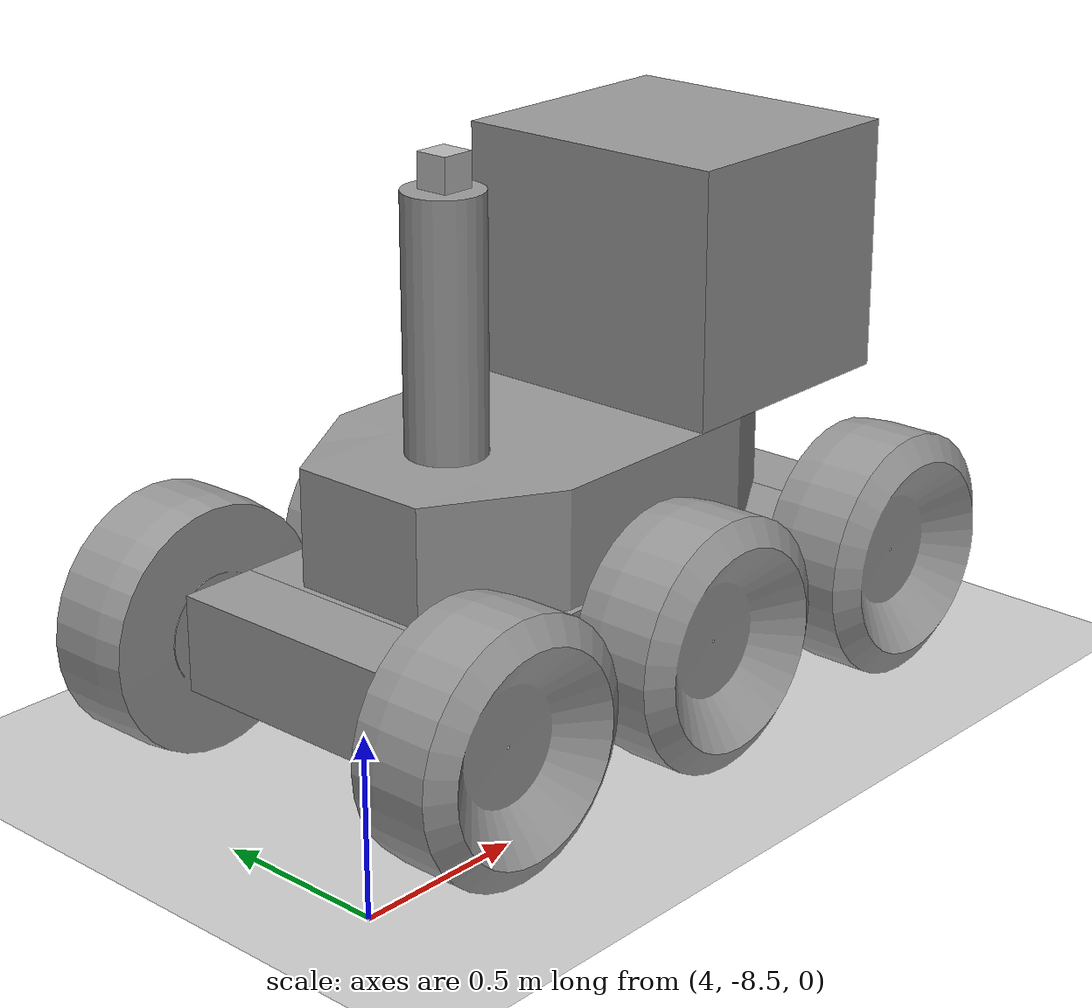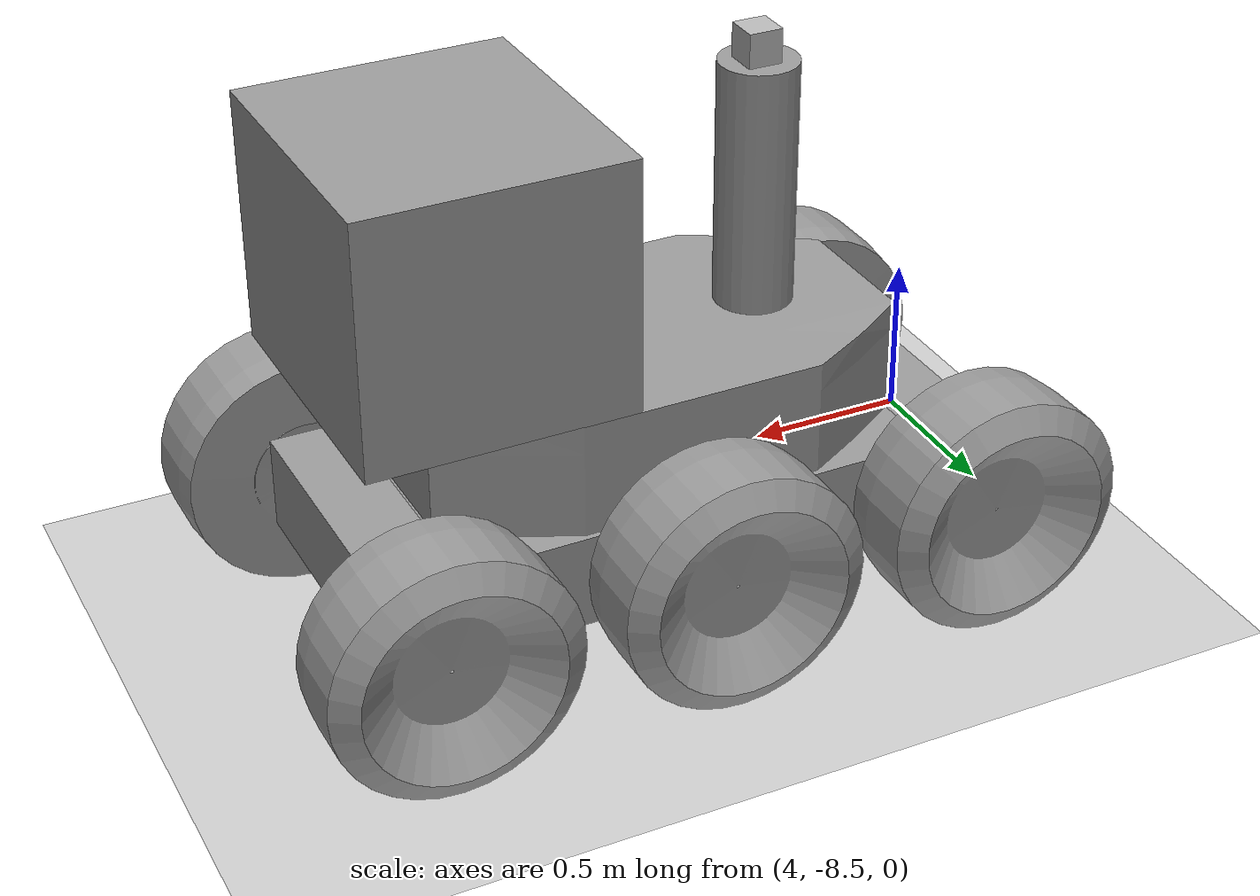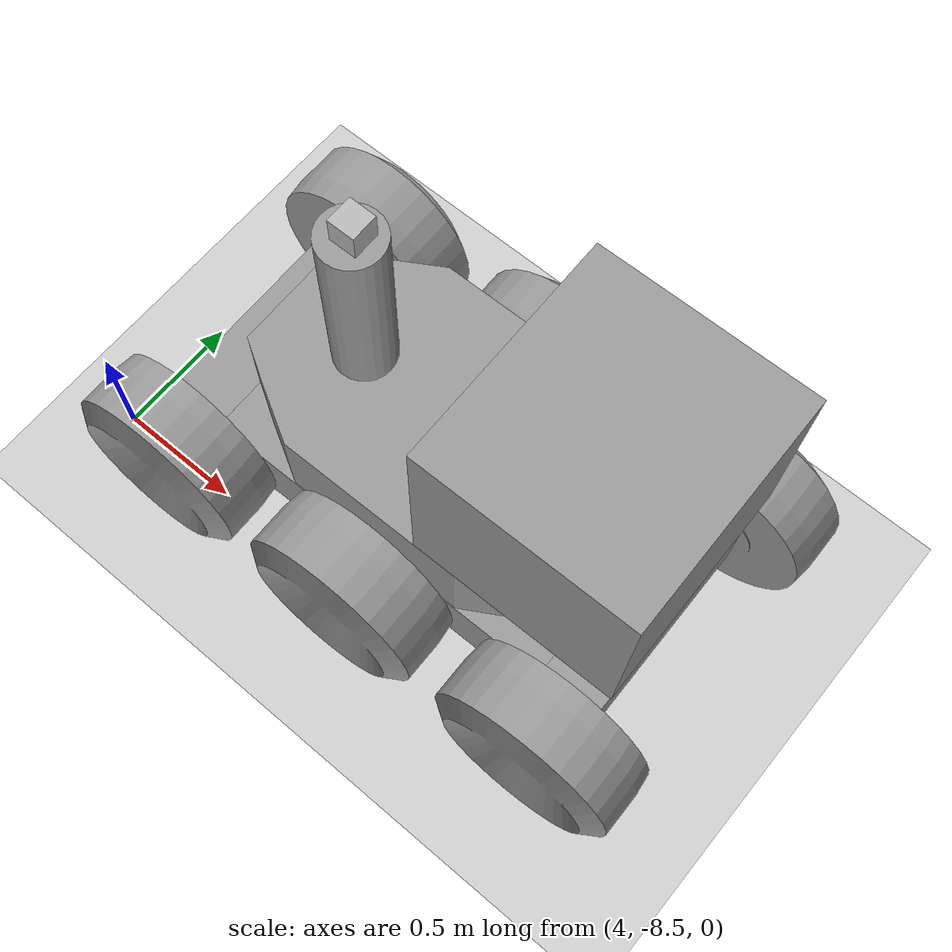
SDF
<sdf version="1.7">
 <world name="default">
  <light name="sun" type="directional">
   <pose>0 0 10 0 -0 0</pose>
   <diffuse>0.8 0.8 0.8 1</diffuse>
   <specular>0.2 0.2 0.2 1</specular>
   <attenuation>
    <range>1000</range>
    <constant>0.9</constant>
    <linear>0.01</linear>
    <quadratic>0.001</quadratic>
   </attenuation>
   <direction>-0.5 0.1 -0.9</direction>
   <spot><inner_angle>0</inner_angle><outer_angle>0</outer_angle><falloff>0</falloff></spot>
  </light>
  <model name="ground_plane">
   <static>1</static>
   <link name="link">
    <collision name="collision">
     <geometry><plane><normal>0 0 1</normal><size>100 100</size></plane></geometry>
     <surface>
      <contact><collide_bitmask>65535</collide_bitmask></contact>
      <friction><ode><mu>100</mu><mu2>50</mu2></ode></friction>
     </surface>
    </collision>
    <visual name="visual">
     <cast_shadows>0</cast_shadows>
     <geometry><plane><normal>0 0 1</normal><size>100 100</size></plane></geometry>
     <material>
      <script><uri>file://media/materials/scripts/gazebo.material</uri><name>Gazebo/Grey</name></script>
     </material>
    </visual>
   </link>
  </model>
  <gravity>0 0 -9.8</gravity>
  <magnetic_field>6e-06 2.3e-05 -4.2e-05</magnetic_field>
  <atmosphere type="adiabatic"/>
  <physics type="ode">
   <max_step_size>0.001</max_step_size>
   <real_time_factor>1</real_time_factor>
   <real_time_update_rate>1000</real_time_update_rate>
  </physics>
  <scene><ambient>0.4 0.4 0.4 1</ambient><background>0.7 0.7 0.7 1</background><shadows>1</shadows></scene>
  <spherical_coordinates>
   <surface_model>EARTH_WGS84</surface_model>
   <latitude_deg>0</latitude_deg>
   <longitude_deg>0</longitude_deg>
   <elevation>0</elevation>
   <heading_deg>0</heading_deg>
  </spherical_coordinates>
  <model name="robovolc">
   <link name="link_0">
    <inertial>
     <mass>1</mass>
     <inertia>
      <ixx>0.166667</ixx>
      <ixy>0</ixy>
      <ixz>0</ixz>
      <iyy>0.166667</iyy>
      <iyz>0</iyz>
      <izz>0.166667</izz>
     </inertia>
    </inertial>
    <pose>-0.014097 0.007179 0 0 -0 0</pose>
    <visual name="visual">
     <geometry>
      <mesh>
       <uri>/media/kenan/kenan-acads/thesis/robot-alignment-thesis/gazebo/models/robovolc/parts/lowerframe.dae</uri>
       <scale>1 1 1</scale>
      </mesh>
     </geometry>
     <material>
      <lighting>1</lighting>
      <script><uri>file://media/materials/scripts/gazebo.material</uri><name>Gazebo/Grey</name></script>
      <shader type="pixel"/>
      <emissive>0 0 0 1</emissive>
     </material>
    </visual>
    <collision name="collision">
     <geometry>
      <mesh>
       <uri>/media/kenan/kenan-acads/thesis/robot-alignment-thesis/gazebo/models/robovolc/parts/lowerframe.dae</uri>
       <scale>1 1 1</scale>
      </mesh>
     </geometry>
     <surface>
      <friction>
       <ode><mu>1</mu><mu2>1</mu2><fdir1>0 0 0</fdir1><slip1>0</slip1><slip2>0</slip2></ode>
       <torsional>
        <coefficient>1</coefficient>
        <patch_radius>0</patch_radius>
        <surface_radius>0</surface_radius>
        <use_patch_radius>1</use_patch_radius>
        <ode><slip>0</slip></ode>
       </torsional>
      </friction>
      <bounce><restitution_coefficient>0</restitution_coefficient><threshold>1e+06</threshold></bounce>
      <contact>
       <collide_without_contact>0</collide_without_contact>
       <collide_without_contact_bitmask>1</collide_without_contact_bitmask>
       <collide_bitmask>1</collide_bitmask>
       <ode>
        <soft_cfm>0</soft_cfm>
        <soft_erp>0.2</soft_erp>
        <kp>1e+13</kp>
        <kd>1</kd>
        <max_vel>0.01</max_vel>
        <min_depth>0</min_depth>
       </ode>
       <bullet>
        <split_impulse>1</split_impulse>
        <split_impulse_penetration_threshold>-0.01</split_impulse_penetration_threshold>
        <soft_cfm>0</soft_cfm>
        <soft_erp>0.2</soft_erp>
        <kp>1e+13</kp>
        <kd>1</kd>
       </bullet>
      </contact>
     </surface>
    </collision>
   </link>
   <link name="link_1">
    <inertial>
     <mass>1</mass>
     <inertia>
      <ixx>0.166667</ixx>
      <ixy>0</ixy>
      <ixz>0</ixz>
      <iyy>0.166667</iyy>
      <iyz>0</iyz>
      <izz>0.166667</izz>
     </inertia>
    </inertial>
    <pose>0.819354 0.007179 0 0 -0 0</pose>
    <visual name="visual">
     <geometry>
      <mesh>
       <uri>/media/kenan/kenan-acads/thesis/robot-alignment-thesis/gazebo/models/robovolc/parts/freedom.dae</uri>
       <scale>1 1 1</scale>
      </mesh>
     </geometry>
     <material>
      <lighting>1</lighting>
      <script><uri>file://media/materials/scripts/gazebo.material</uri><name>Gazebo/Grey</name></script>
      <shader type="pixel"/>
      <emissive>0 0 0 1</emissive>
     </material>
    </visual>
    <collision name="collision">
     <geometry>
      <mesh>
       <uri>/media/kenan/kenan-acads/thesis/robot-alignment-thesis/gazebo/models/robovolc/parts/freedom.dae</uri>
       <scale>1 1 1</scale>
      </mesh>
     </geometry>
     <surface>
      <friction>
       <ode><mu>1</mu><mu2>1</mu2><fdir1>0 0 0</fdir1><slip1>0</slip1><slip2>0</slip2></ode>
       <torsional>
        <coefficient>1</coefficient>
        <patch_radius>0</patch_radius>
        <surface_radius>0</surface_radius>
        <use_patch_radius>1</use_patch_radius>
        <ode><slip>0</slip></ode>
       </torsional>
      </friction>
      <bounce><restitution_coefficient>0</restitution_coefficient><threshold>1e+06</threshold></bounce>
      <contact>
       <collide_without_contact>0</collide_without_contact>
       <collide_without_contact_bitmask>1</collide_without_contact_bitmask>
       <collide_bitmask>1</collide_bitmask>
       <ode>
        <soft_cfm>0</soft_cfm>
        <soft_erp>0.2</soft_erp>
        <kp>1e+13</kp>
        <kd>1</kd>
        <max_vel>0.01</max_vel>
        <min_depth>0</min_depth>
       </ode>
       <bullet>
        <split_impulse>1</split_impulse>
        <split_impulse_penetration_threshold>-0.01</split_impulse_penetration_threshold>
        <soft_cfm>0</soft_cfm>
        <soft_erp>0.2</soft_erp>
        <kp>1e+13</kp>
        <kd>1</kd>
       </bullet>
      </contact>
     </surface>
    </collision>
   </link>
   <link name="link_1_clone">
    <inertial>
     <mass>1</mass>
     <inertia>
      <ixx>0.166667</ixx>
      <ixy>0</ixy>
      <ixz>0</ixz>
      <iyy>0.166667</iyy>
      <iyz>0</iyz>
      <izz>0.166667</izz>
     </inertia>
    </inertial>
    <pose>-0.84755 0.007179 0 0 -0 0</pose>
    <visual name="visual">
     <geometry>
      <mesh>
       <uri>/media/kenan/kenan-acads/thesis/robot-alignment-thesis/gazebo/models/robovolc/parts/freedom.dae</uri>
       <scale>1 1 1</scale>
      </mesh>
     </geometry>
     <material>
      <lighting>1</lighting>
      <script><uri>file://media/materials/scripts/gazebo.material</uri><name>Gazebo/Grey</name></script>
      <shader type="pixel"/>
      <emissive>0 0 0 1</emissive>
     </material>
    </visual>
    <collision name="collision">
     <geometry>
      <mesh>
       <uri>/media/kenan/kenan-acads/thesis/robot-alignment-thesis/gazebo/models/robovolc/parts/freedom.dae</uri>
       <scale>1 1 1</scale>
      </mesh>
     </geometry>
     <surface>
      <friction>
       <ode><mu>1</mu><mu2>1</mu2><fdir1>0 0 0</fdir1><slip1>0</slip1><slip2>0</slip2></ode>
       <torsional>
        <coefficient>1</coefficient>
        <patch_radius>0</patch_radius>
        <surface_radius>0</surface_radius>
        <use_patch_radius>1</use_patch_radius>
        <ode><slip>0</slip></ode>
       </torsional>
      </friction>
      <bounce><restitution_coefficient>0</restitution_coefficient><threshold>1e+06</threshold></bounce>
      <contact>
       <collide_without_contact>0</collide_without_contact>
       <collide_without_contact_bitmask>1</collide_without_contact_bitmask>
       <collide_bitmask>1</collide_bitmask>
       <ode>
        <soft_cfm>0</soft_cfm>
        <soft_erp>0.2</soft_erp>
        <kp>1e+13</kp>
        <kd>1</kd>
        <max_vel>0.01</max_vel>
        <min_depth>0</min_depth>
       </ode>
       <bullet>
        <split_impulse>1</split_impulse>
        <split_impulse_penetration_threshold>-0.01</split_impulse_penetration_threshold>
        <soft_cfm>0</soft_cfm>
        <soft_erp>0.2</soft_erp>
        <kp>1e+13</kp>
        <kd>1</kd>
       </bullet>
      </contact>
     </surface>
    </collision>
   </link>
   <link name="link_2">
    <inertial>
     <mass>1</mass>
     <inertia>
      <ixx>0.166667</ixx>
      <ixy>0</ixy>
      <ixz>0</ixz>
      <iyy>0.166667</iyy>
      <iyz>0</iyz>
      <izz>0.166667</izz>
     </inertia>
    </inertial>
    <pose>0.826437 -0.58875 0 0 -0 0</pose>
    <visual name="visual">
     <geometry>
      <mesh>
       <uri>/media/kenan/kenan-acads/thesis/robot-alignment-thesis/gazebo/models/robovolc/parts/wheel.dae</uri>
       <scale>1 1 1</scale>
      </mesh>
     </geometry>
     <material>
      <lighting>1</lighting>
      <script><uri>file://media/materials/scripts/gazebo.material</uri><name>Gazebo/Grey</name></script>
      <shader type="pixel"/>
      <emissive>0 0 0 1</emissive>
     </material>
    </visual>
    <collision name="collision">
     <geometry>
      <mesh>
       <uri>/media/kenan/kenan-acads/thesis/robot-alignment-thesis/gazebo/models/robovolc/parts/wheel.dae</uri>
       <scale>1 1 1</scale>
      </mesh>
     </geometry>
     <surface>
      <friction>
       <ode><mu>1</mu><mu2>1</mu2><fdir1>0 0 0</fdir1><slip1>0</slip1><slip2>0</slip2></ode>
       <torsional>
        <coefficient>1</coefficient>
        <patch_radius>0</patch_radius>
        <surface_radius>0</surface_radius>
        <use_patch_radius>1</use_patch_radius>
        <ode><slip>0</slip></ode>
       </torsional>
      </friction>
      <bounce><restitution_coefficient>0</restitution_coefficient><threshold>1e+06</threshold></bounce>
      <contact>
       <collide_without_contact>0</collide_without_contact>
       <collide_without_contact_bitmask>1</collide_without_contact_bitmask>
       <collide_bitmask>1</collide_bitmask>
       <ode>
        <soft_cfm>0</soft_cfm>
        <soft_erp>0.2</soft_erp>
        <kp>1e+13</kp>
        <kd>1</kd>
        <max_vel>0.01</max_vel>
        <min_depth>0</min_depth>
       </ode>
       <bullet>
        <split_impulse>1</split_impulse>
        <split_impulse_penetration_threshold>-0.01</split_impulse_penetration_threshold>
        <soft_cfm>0</soft_cfm>
        <soft_erp>0.2</soft_erp>
        <kp>1e+13</kp>
        <kd>1</kd>
       </bullet>
      </contact>
     </surface>
    </collision>
   </link>
   <link name="link_2_clone">
    <inertial>
     <mass>1</mass>
     <inertia>
      <ixx>0.166667</ixx>
      <ixy>0</ixy>
      <ixz>0</ixz>
      <iyy>0.166667</iyy>
      <iyz>0</iyz>
      <izz>0.166667</izz>
     </inertia>
    </inertial>
    <pose>-0.840467 -0.588751 0 0 -0 0</pose>
    <visual name="visual">
     <geometry>
      <mesh>
       <uri>/media/kenan/kenan-acads/thesis/robot-alignment-thesis/gazebo/models/robovolc/parts/wheel.dae</uri>
       <scale>1 1 1</scale>
      </mesh>
     </geometry>
     <material>
      <lighting>1</lighting>
      <script><uri>file://media/materials/scripts/gazebo.material</uri><name>Gazebo/Grey</name></script>
      <shader type="pixel"/>
      <emissive>0 0 0 1</emissive>
     </material>
    </visual>
    <collision name="collision">
     <geometry>
      <mesh>
       <uri>/media/kenan/kenan-acads/thesis/robot-alignment-thesis/gazebo/models/robovolc/parts/wheel.dae</uri>
       <scale>1 1 1</scale>
      </mesh>
     </geometry>
     <surface>
      <friction>
       <ode><mu>1</mu><mu2>1</mu2><fdir1>0 0 0</fdir1><slip1>0</slip1><slip2>0</slip2></ode>
       <torsional>
        <coefficient>1</coefficient>
        <patch_radius>0</patch_radius>
        <surface_radius>0</surface_radius>
        <use_patch_radius>1</use_patch_radius>
        <ode><slip>0</slip></ode>
       </torsional>
      </friction>
      <bounce><restitution_coefficient>0</restitution_coefficient><threshold>1e+06</threshold></bounce>
      <contact>
       <collide_without_contact>0</collide_without_contact>
       <collide_without_contact_bitmask>1</collide_without_contact_bitmask>
       <collide_bitmask>1</collide_bitmask>
       <ode>
        <soft_cfm>0</soft_cfm>
        <soft_erp>0.2</soft_erp>
        <kp>1e+13</kp>
        <kd>1</kd>
        <max_vel>0.01</max_vel>
        <min_depth>0</min_depth>
       </ode>
       <bullet>
        <split_impulse>1</split_impulse>
        <split_impulse_penetration_threshold>-0.01</split_impulse_penetration_threshold>
        <soft_cfm>0</soft_cfm>
        <soft_erp>0.2</soft_erp>
        <kp>1e+13</kp>
        <kd>1</kd>
       </bullet>
      </contact>
     </surface>
    </collision>
   </link>
   <link name="link_2_clone_0_clone_clone">
    <inertial>
     <mass>1</mass>
     <inertia>
      <ixx>0.166667</ixx>
      <ixy>0</ixy>
      <ixz>0</ixz>
      <iyy>0.166667</iyy>
      <iyz>0</iyz>
      <izz>0.166667</izz>
     </inertia>
    </inertial>
    <pose>0.826437 0.60311 0 0 -0 3.14159</pose>
    <visual name="visual">
     <geometry>
      <mesh>
       <uri>/media/kenan/kenan-acads/thesis/robot-alignment-thesis/gazebo/models/robovolc/parts/wheel.dae</uri>
       <scale>1 1 1</scale>
      </mesh>
     </geometry>
     <material>
      <lighting>1</lighting>
      <script><uri>file://media/materials/scripts/gazebo.material</uri><name>Gazebo/Grey</name></script>
      <shader type="pixel"><normal_map>__default__</normal_map></shader>
      <emissive>0 0 0 1</emissive>
      <ambient>0.3 0.3 0.3 1</ambient>
      <diffuse>0.7 0.7 0.7 1</diffuse>
      <specular>0.01 0.01 0.01 1</specular>
     </material>
    </visual>
    <collision name="collision">
     <geometry>
      <mesh>
       <uri>/media/kenan/kenan-acads/thesis/robot-alignment-thesis/gazebo/models/robovolc/parts/wheel.dae</uri>
       <scale>1 1 1</scale>
      </mesh>
     </geometry>
     <surface>
      <friction>
       <ode><mu>1</mu><mu2>1</mu2><fdir1>0 0 0</fdir1><slip1>0</slip1><slip2>0</slip2></ode>
       <torsional>
        <coefficient>1</coefficient>
        <patch_radius>0</patch_radius>
        <surface_radius>0</surface_radius>
        <use_patch_radius>1</use_patch_radius>
        <ode><slip>0</slip></ode>
       </torsional>
      </friction>
      <bounce><restitution_coefficient>0</restitution_coefficient><threshold>1e+06</threshold></bounce>
      <contact>
       <collide_without_contact>0</collide_without_contact>
       <collide_without_contact_bitmask>1</collide_without_contact_bitmask>
       <collide_bitmask>1</collide_bitmask>
       <ode>
        <soft_cfm>0</soft_cfm>
        <soft_erp>0.2</soft_erp>
        <kp>1e+13</kp>
        <kd>1</kd>
        <max_vel>0.01</max_vel>
        <min_depth>0</min_depth>
       </ode>
       <bullet>
        <split_impulse>1</split_impulse>
        <split_impulse_penetration_threshold>-0.01</split_impulse_penetration_threshold>
        <soft_cfm>0</soft_cfm>
        <soft_erp>0.2</soft_erp>
        <kp>1e+13</kp>
        <kd>1</kd>
       </bullet>
      </contact>
     </surface>
    </collision>
   </link>
   <link name="link_2_clone_0_clone_clone_clone">
    <inertial>
     <mass>1</mass>
     <inertia>
      <ixx>0.166667</ixx>
      <ixy>0</ixy>
      <ixz>0</ixz>
      <iyy>0.166667</iyy>
      <iyz>0</iyz>
      <izz>0.166667</izz>
     </inertia>
    </inertial>
    <pose>-0.84755 0.60311 0 0 -0 3.14159</pose>
    <visual name="visual">
     <geometry>
      <mesh>
       <uri>/media/kenan/kenan-acads/thesis/robot-alignment-thesis/gazebo/models/robovolc/parts/wheel.dae</uri>
       <scale>1 1 1</scale>
      </mesh>
     </geometry>
     <material>
      <lighting>1</lighting>
      <script><uri>file://media/materials/scripts/gazebo.material</uri><name>Gazebo/Grey</name></script>
      <shader type="pixel"><normal_map>__default__</normal_map></shader>
      <emissive>0 0 0 1</emissive>
      <ambient>0.3 0.3 0.3 1</ambient>
      <diffuse>0.7 0.7 0.7 1</diffuse>
      <specular>0.01 0.01 0.01 1</specular>
     </material>
    </visual>
    <collision name="collision">
     <geometry>
      <mesh>
       <uri>/media/kenan/kenan-acads/thesis/robot-alignment-thesis/gazebo/models/robovolc/parts/wheel.dae</uri>
       <scale>1 1 1</scale>
      </mesh>
     </geometry>
     <surface>
      <friction>
       <ode><mu>1</mu><mu2>1</mu2><fdir1>0 0 0</fdir1><slip1>0</slip1><slip2>0</slip2></ode>
       <torsional>
        <coefficient>1</coefficient>
        <patch_radius>0</patch_radius>
        <surface_radius>0</surface_radius>
        <use_patch_radius>1</use_patch_radius>
        <ode><slip>0</slip></ode>
       </torsional>
      </friction>
      <bounce><restitution_coefficient>0</restitution_coefficient><threshold>1e+06</threshold></bounce>
      <contact>
       <collide_without_contact>0</collide_without_contact>
       <collide_without_contact_bitmask>1</collide_without_contact_bitmask>
       <collide_bitmask>1</collide_bitmask>
       <ode>
        <soft_cfm>0</soft_cfm>
        <soft_erp>0.2</soft_erp>
        <kp>1e+13</kp>
        <kd>1</kd>
        <max_vel>0.01</max_vel>
        <min_depth>0</min_depth>
       </ode>
       <bullet>
        <split_impulse>1</split_impulse>
        <split_impulse_penetration_threshold>-0.01</split_impulse_penetration_threshold>
        <soft_cfm>0</soft_cfm>
        <soft_erp>0.2</soft_erp>
        <kp>1e+13</kp>
        <kd>1</kd>
       </bullet>
      </contact>
     </surface>
    </collision>
   </link>
   <link name="link_2_clone_0_clone_clone_clone_0">
    <inertial>
     <mass>1</mass>
     <inertia>
      <ixx>0.166667</ixx>
      <ixy>0</ixy>
      <ixz>0</ixz>
      <iyy>0.166667</iyy>
      <iyz>0</iyz>
      <izz>0.166667</izz>
     </inertia>
    </inertial>
    <pose>-0.014097 0.60311 0 0 -0 3.14159</pose>
    <visual name="visual">
     <geometry>
      <mesh>
       <uri>/media/kenan/kenan-acads/thesis/robot-alignment-thesis/gazebo/models/robovolc/parts/wheel.dae</uri>
       <scale>1 1 1</scale>
      </mesh>
     </geometry>
     <material>
      <lighting>1</lighting>
      <script><uri>file://media/materials/scripts/gazebo.material</uri><name>Gazebo/Grey</name></script>
      <shader type="pixel"><normal_map>__default__</normal_map></shader>
      <emissive>0 0 0 1</emissive>
      <ambient>0.3 0.3 0.3 1</ambient>
      <diffuse>0.7 0.7 0.7 1</diffuse>
      <specular>0.01 0.01 0.01 1</specular>
     </material>
    </visual>
    <collision name="collision">
     <geometry>
      <mesh>
       <uri>/media/kenan/kenan-acads/thesis/robot-alignment-thesis/gazebo/models/robovolc/parts/wheel.dae</uri>
       <scale>1 1 1</scale>
      </mesh>
     </geometry>
     <surface>
      <friction>
       <ode><mu>1</mu><mu2>1</mu2><fdir1>0 0 0</fdir1><slip1>0</slip1><slip2>0</slip2></ode>
       <torsional>
        <coefficient>1</coefficient>
        <patch_radius>0</patch_radius>
        <surface_radius>0</surface_radius>
        <use_patch_radius>1</use_patch_radius>
        <ode><slip>0</slip></ode>
       </torsional>
      </friction>
      <bounce><restitution_coefficient>0</restitution_coefficient><threshold>1e+06</threshold></bounce>
      <contact>
       <collide_without_contact>0</collide_without_contact>
       <collide_without_contact_bitmask>1</collide_without_contact_bitmask>
       <collide_bitmask>1</collide_bitmask>
       <ode>
        <soft_cfm>0</soft_cfm>
        <soft_erp>0.2</soft_erp>
        <kp>1e+13</kp>
        <kd>1</kd>
        <max_vel>0.01</max_vel>
        <min_depth>0</min_depth>
       </ode>
       <bullet>
        <split_impulse>1</split_impulse>
        <split_impulse_penetration_threshold>-0.01</split_impulse_penetration_threshold>
        <soft_cfm>0</soft_cfm>
        <soft_erp>0.2</soft_erp>
        <kp>1e+13</kp>
        <kd>1</kd>
       </bullet>
      </contact>
     </surface>
    </collision>
   </link>
   <link name="link_2_clone_clone">
    <inertial>
     <mass>1</mass>
     <inertia>
      <ixx>0.166667</ixx>
      <ixy>0</ixy>
      <ixz>0</ixz>
      <iyy>0.166667</iyy>
      <iyz>0</iyz>
      <izz>0.166667</izz>
     </inertia>
    </inertial>
    <pose>-0.014097 -0.588751 0 0 -0 0</pose>
    <visual name="visual">
     <geometry>
      <mesh>
       <uri>/media/kenan/kenan-acads/thesis/robot-alignment-thesis/gazebo/models/robovolc/parts/wheel.dae</uri>
       <scale>1 1 1</scale>
      </mesh>
     </geometry>
     <material>
      <lighting>1</lighting>
      <script><uri>file://media/materials/scripts/gazebo.material</uri><name>Gazebo/Grey</name></script>
      <shader type="pixel"/>
      <emissive>0 0 0 1</emissive>
     </material>
    </visual>
    <collision name="collision">
     <geometry>
      <mesh>
       <uri>/media/kenan/kenan-acads/thesis/robot-alignment-thesis/gazebo/models/robovolc/parts/wheel.dae</uri>
       <scale>1 1 1</scale>
      </mesh>
     </geometry>
     <surface>
      <friction>
       <ode><mu>1</mu><mu2>1</mu2><fdir1>0 0 0</fdir1><slip1>0</slip1><slip2>0</slip2></ode>
       <torsional>
        <coefficient>1</coefficient>
        <patch_radius>0</patch_radius>
        <surface_radius>0</surface_radius>
        <use_patch_radius>1</use_patch_radius>
        <ode><slip>0</slip></ode>
       </torsional>
      </friction>
      <bounce><restitution_coefficient>0</restitution_coefficient><threshold>1e+06</threshold></bounce>
      <contact>
       <collide_without_contact>0</collide_without_contact>
       <collide_without_contact_bitmask>1</collide_without_contact_bitmask>
       <collide_bitmask>1</collide_bitmask>
       <ode>
        <soft_cfm>0</soft_cfm>
        <soft_erp>0.2</soft_erp>
        <kp>1e+13</kp>
        <kd>1</kd>
        <max_vel>0.01</max_vel>
        <min_depth>0</min_depth>
       </ode>
       <bullet>
        <split_impulse>1</split_impulse>
        <split_impulse_penetration_threshold>-0.01</split_impulse_penetration_threshold>
        <soft_cfm>0</soft_cfm>
        <soft_erp>0.2</soft_erp>
        <kp>1e+13</kp>
        <kd>1</kd>
       </bullet>
      </contact>
     </surface>
    </collision>
   </link>
   <link name="link_3">
    <inertial>
     <mass>1</mass>
     <inertia>
      <ixx>0.166667</ixx>
      <ixy>0</ixy>
      <ixz>0</ixz>
      <iyy>0.166667</iyy>
      <iyz>0</iyz>
      <izz>0.166667</izz>
     </inertia>
    </inertial>
    <pose>-0.014097 0.007179 0.323851 0 -0 0</pose>
    <visual name="visual">
     <geometry>
      <mesh>
       <uri>/media/kenan/kenan-acads/thesis/robot-alignment-thesis/gazebo/models/robovolc/parts/body.dae</uri>
       <scale>1 1 1</scale>
      </mesh>
     </geometry>
     <material>
      <lighting>1</lighting>
      <script><uri>file://media/materials/scripts/gazebo.material</uri><name>Gazebo/Grey</name></script>
      <shader type="pixel"/>
      <emissive>0 0 0 1</emissive>
     </material>
    </visual>
    <collision name="collision">
     <geometry>
      <mesh>
       <uri>/media/kenan/kenan-acads/thesis/robot-alignment-thesis/gazebo/models/robovolc/parts/body.dae</uri>
       <scale>1 1 1</scale>
      </mesh>
     </geometry>
     <surface>
      <friction>
       <ode><mu>1</mu><mu2>1</mu2><fdir1>0 0 0</fdir1><slip1>0</slip1><slip2>0</slip2></ode>
       <torsional>
        <coefficient>1</coefficient>
        <patch_radius>0</patch_radius>
        <surface_radius>0</surface_radius>
        <use_patch_radius>1</use_patch_radius>
        <ode><slip>0</slip></ode>
       </torsional>
      </friction>
      <bounce><restitution_coefficient>0</restitution_coefficient><threshold>1e+06</threshold></bounce>
      <contact>
       <collide_without_contact>0</collide_without_contact>
       <collide_without_contact_bitmask>1</collide_without_contact_bitmask>
       <collide_bitmask>1</collide_bitmask>
       <ode>
        <soft_cfm>0</soft_cfm>
        <soft_erp>0.2</soft_erp>
        <kp>1e+13</kp>
        <kd>1</kd>
        <max_vel>0.01</max_vel>
        <min_depth>0</min_depth>
       </ode>
       <bullet>
        <split_impulse>1</split_impulse>
        <split_impulse_penetration_threshold>-0.01</split_impulse_penetration_threshold>
        <soft_cfm>0</soft_cfm>
        <soft_erp>0.2</soft_erp>
        <kp>1e+13</kp>
        <kd>1</kd>
       </bullet>
      </contact>
     </surface>
    </collision>
   </link>
   <link name="link_4">
    <inertial>
     <mass>1</mass>
     <inertia>
      <ixx>0.166667</ixx>
      <ixy>0</ixy>
      <ixz>0</ixz>
      <iyy>0.166667</iyy>
      <iyz>0</iyz>
      <izz>0.166667</izz>
     </inertia>
    </inertial>
    <pose>0.565967 0.007179 0.863603 0 -0 0</pose>
    <visual name="visual">
     <geometry>
      <mesh>
       <uri>/media/kenan/kenan-acads/thesis/robot-alignment-thesis/gazebo/models/robovolc/parts/box.dae</uri>
       <scale>1 1 1</scale>
      </mesh>
     </geometry>
     <material>
      <lighting>1</lighting>
      <script><uri>file://media/materials/scripts/gazebo.material</uri><name>Gazebo/Grey</name></script>
      <shader type="pixel"/>
      <emissive>0 0 0 1</emissive>
     </material>
    </visual>
    <collision name="collision">
     <geometry>
      <mesh>
       <uri>/media/kenan/kenan-acads/thesis/robot-alignment-thesis/gazebo/models/robovolc/parts/box.dae</uri>
       <scale>1 1 1</scale>
      </mesh>
     </geometry>
     <surface>
      <friction>
       <ode><mu>1</mu><mu2>1</mu2><fdir1>0 0 0</fdir1><slip1>0</slip1><slip2>0</slip2></ode>
       <torsional>
        <coefficient>1</coefficient>
        <patch_radius>0</patch_radius>
        <surface_radius>0</surface_radius>
        <use_patch_radius>1</use_patch_radius>
        <ode><slip>0</slip></ode>
       </torsional>
      </friction>
      <bounce><restitution_coefficient>0</restitution_coefficient><threshold>1e+06</threshold></bounce>
      <contact>
       <collide_without_contact>0</collide_without_contact>
       <collide_without_contact_bitmask>1</collide_without_contact_bitmask>
       <collide_bitmask>1</collide_bitmask>
       <ode>
        <soft_cfm>0</soft_cfm>
        <soft_erp>0.2</soft_erp>
        <kp>1e+13</kp>
        <kd>1</kd>
        <max_vel>0.01</max_vel>
        <min_depth>0</min_depth>
       </ode>
       <bullet>
        <split_impulse>1</split_impulse>
        <split_impulse_penetration_threshold>-0.01</split_impulse_penetration_threshold>
        <soft_cfm>0</soft_cfm>
        <soft_erp>0.2</soft_erp>
        <kp>1e+13</kp>
        <kd>1</kd>
       </bullet>
      </contact>
     </surface>
    </collision>
   </link>
   <link name="link_5">
    <inertial>
     <mass>0.0385401</mass>
     <inertia>
      <ixx>0.00182388</ixx>
      <ixy>0</ixy>
      <ixz>0</ixz>
      <iyy>0.00182388</iyy>
      <iyz>0</iyz>
      <izz>0.000255542</izz>
     </inertia>
    </inertial>
    <pose>-0.390551 0.007179 0.858934 0 -0 0</pose>
    <visual name="visual">
     <geometry><cylinder><radius>0.115157</radius><length>0.72671</length></cylinder></geometry>
     <material>
      <lighting>1</lighting>
      <script><uri>file://media/materials/scripts/gazebo.material</uri><name>Gazebo/Grey</name></script>
      <shader type="pixel"/>
      <emissive>0 0 0 1</emissive>
     </material>
    </visual>
    <collision name="collision">
     <geometry><cylinder><radius>0.115157</radius><length>0.72671</length></cylinder></geometry>
     <surface>
      <friction>
       <ode><mu>1</mu><mu2>1</mu2><fdir1>0 0 0</fdir1><slip1>0</slip1><slip2>0</slip2></ode>
       <torsional>
        <coefficient>1</coefficient>
        <patch_radius>0</patch_radius>
        <surface_radius>0</surface_radius>
        <use_patch_radius>1</use_patch_radius>
        <ode><slip>0</slip></ode>
       </torsional>
      </friction>
      <bounce><restitution_coefficient>0</restitution_coefficient><threshold>1e+06</threshold></bounce>
      <contact>
       <collide_without_contact>0</collide_without_contact>
       <collide_without_contact_bitmask>1</collide_without_contact_bitmask>
       <collide_bitmask>1</collide_bitmask>
       <ode>
        <soft_cfm>0</soft_cfm>
        <soft_erp>0.2</soft_erp>
        <kp>1e+13</kp>
        <kd>1</kd>
        <max_vel>0.01</max_vel>
        <min_depth>0</min_depth>
       </ode>
       <bullet>
        <split_impulse>1</split_impulse>
        <split_impulse_penetration_threshold>-0.01</split_impulse_penetration_threshold>
        <soft_cfm>0</soft_cfm>
        <soft_erp>0.2</soft_erp>
        <kp>1e+13</kp>
        <kd>1</kd>
       </bullet>
      </contact>
     </surface>
    </collision>
   </link>
   <model name="camera">
    <pose>-0.381907 0.010528 1.27216 0 -0 3.13666</pose>
    <link name="link">
     <inertial>
      <mass>0.1</mass>
      <inertia>
       <ixx>0.000166667</ixx>
       <iyy>0.000166667</iyy>
       <izz>0.000166667</izz>
       <ixy>0</ixy>
       <ixz>0</ixz>
       <iyz>0</iyz>
      </inertia>
     </inertial>
     <collision name="collision"><geometry><box><size>0.1 0.1 0.1</size></box></geometry></collision>
     <visual name="visual"><geometry><box><size>0.1 0.1 0.1</size></box></geometry></visual>
     <sensor name="camera" type="camera">
      <camera>
       <horizontal_fov>1.047</horizontal_fov>
       <image><width>320</width><height>240</height></image>
       <clip><near>0.1</near><far>100</far></clip>
      </camera>
      <always_on>1</always_on>
      <update_rate>30</update_rate>
      <visualize>1</visualize>
     </sensor>
    </link>
   </model>
   <joint name="left_1" type="revolute">
    <parent>link_1</parent>
    <child>link_2</child>
    <axis>
     <xyz>0 -1 0</xyz>
     <limit>
      <lower>-1.79769e+308</lower>
      <upper>1.79769e+308</upper>
      <effort>-1</effort>
      <velocity>-1</velocity>
     </limit>
     <dynamics>
      <spring_reference>0</spring_reference>
      <spring_stiffness>0</spring_stiffness>
      <damping>0</damping>
      <friction>0</friction>
     </dynamics>
    </axis>
    <physics>
     <ode><limit><cfm>0</cfm><erp>0.2</erp></limit><suspension><cfm>0</cfm><erp>0.2</erp></suspension></ode>
    </physics>
   </joint>
   <joint name="left_2" type="revolute">
    <parent>link_0</parent>
    <child>link_2_clone_clone</child>
    <axis>
     <xyz>0 -1 0</xyz>
     <limit>
      <lower>-1.79769e+308</lower>
      <upper>1.79769e+308</upper>
      <effort>-1</effort>
      <velocity>-1</velocity>
     </limit>
     <dynamics>
      <spring_reference>0</spring_reference>
      <spring_stiffness>0</spring_stiffness>
      <damping>0</damping>
      <friction>0</friction>
     </dynamics>
    </axis>
    <physics>
     <ode><limit><cfm>0</cfm><erp>0.2</erp></limit><suspension><cfm>0</cfm><erp>0.2</erp></suspension></ode>
    </physics>
   </joint>
   <joint name="left_3" type="revolute">
    <parent>link_1_clone</parent>
    <child>link_2_clone</child>
    <axis>
     <xyz>0 -1 0</xyz>
     <limit>
      <lower>-1.79769e+308</lower>
      <upper>1.79769e+308</upper>
      <effort>-1</effort>
      <velocity>-1</velocity>
     </limit>
     <dynamics>
      <spring_reference>0</spring_reference>
      <spring_stiffness>0</spring_stiffness>
      <damping>0</damping>
      <friction>0</friction>
     </dynamics>
    </axis>
    <physics>
     <ode><limit><cfm>0</cfm><erp>0.2</erp></limit><suspension><cfm>0</cfm><erp>0.2</erp></suspension></ode>
    </physics>
   </joint>
   <joint name="link_0_JOINT_0" type="revolute">
    <parent>link_0</parent>
    <child>link_1</child>
    <axis>
     <xyz>1 0 0</xyz>
     <limit>
      <lower>-1.79769e+308</lower>
      <upper>1.79769e+308</upper>
      <effort>-1</effort>
      <velocity>-1</velocity>
     </limit>
     <dynamics>
      <spring_reference>0</spring_reference>
      <spring_stiffness>0</spring_stiffness>
      <damping>0</damping>
      <friction>0</friction>
     </dynamics>
    </axis>
    <physics>
     <ode><limit><cfm>0</cfm><erp>0.2</erp></limit><suspension><cfm>0</cfm><erp>0.2</erp></suspension></ode>
    </physics>
   </joint>
   <joint name="link_0_JOINT_10" type="fixed">
    <parent>link_0</parent>
    <child>link_3</child>
    <physics>
     <ode><limit><cfm>0</cfm><erp>0.2</erp></limit><suspension><cfm>0</cfm><erp>0.2</erp></suspension></ode>
    </physics>
   </joint>
   <joint name="link_0_JOINT_1" type="revolute">
    <parent>link_0</parent>
    <child>link_1_clone</child>
    <axis>
     <xyz>1 0 0</xyz>
     <limit>
      <lower>-1.79769e+308</lower>
      <upper>1.79769e+308</upper>
      <effort>-1</effort>
      <velocity>-1</velocity>
     </limit>
     <dynamics>
      <spring_reference>0</spring_reference>
      <spring_stiffness>0</spring_stiffness>
      <damping>0</damping>
      <friction>0</friction>
     </dynamics>
    </axis>
    <physics>
     <ode><limit><cfm>0</cfm><erp>0.2</erp></limit><suspension><cfm>0</cfm><erp>0.2</erp></suspension></ode>
    </physics>
   </joint>
   <joint name="link_3_JOINT_11" type="fixed">
    <parent>link_3</parent>
    <child>link_4</child>
    <physics>
     <ode><limit><cfm>0</cfm><erp>0.2</erp></limit><suspension><cfm>0</cfm><erp>0.2</erp></suspension></ode>
    </physics>
   </joint>
   <joint name="link_3_JOINT_14" type="fixed">
    <parent>link_3</parent>
    <child>link_5</child>
    <physics>
     <ode><limit><cfm>0</cfm><erp>0.2</erp></limit><suspension><cfm>0</cfm><erp>0.2</erp></suspension></ode>
    </physics>
   </joint>
   <joint name="link_5_JOINT_15" type="revolute">
    <parent>link_5</parent>
    <child>camera::link</child>
    <axis>
     <xyz>1 0 0</xyz>
     <limit>
      <lower>-1.79769e+308</lower>
      <upper>1.79769e+308</upper>
      <effort>-1</effort>
      <velocity>-1</velocity>
     </limit>
     <dynamics>
      <spring_reference>0</spring_reference>
      <spring_stiffness>0</spring_stiffness>
      <damping>0</damping>
      <friction>0</friction>
     </dynamics>
    </axis>
    <physics>
     <ode><limit><cfm>0</cfm><erp>0.2</erp></limit><suspension><cfm>0</cfm><erp>0.2</erp></suspension></ode>
    </physics>
   </joint>
   <joint name="right_1" type="revolute">
    <parent>link_1</parent>
    <child>link_2_clone_0_clone_clone</child>
    <axis>
     <xyz>0 -1 0</xyz>
     <limit>
      <lower>-1.79769e+308</lower>
      <upper>1.79769e+308</upper>
      <effort>-1</effort>
      <velocity>-1</velocity>
     </limit>
     <dynamics>
      <spring_reference>0</spring_reference>
      <spring_stiffness>0</spring_stiffness>
      <damping>0</damping>
      <friction>0</friction>
     </dynamics>
    </axis>
    <physics>
     <ode><limit><cfm>0</cfm><erp>0.2</erp></limit><suspension><cfm>0</cfm><erp>0.2</erp></suspension></ode>
    </physics>
   </joint>
   <joint name="right_2" type="revolute">
    <parent>link_0</parent>
    <child>link_2_clone_0_clone_clone_clone_0</child>
    <axis>
     <xyz>0 -1 0</xyz>
     <limit>
      <lower>-1.79769e+308</lower>
      <upper>1.79769e+308</upper>
      <effort>-1</effort>
      <velocity>-1</velocity>
     </limit>
     <dynamics>
      <spring_reference>0</spring_reference>
      <spring_stiffness>0</spring_stiffness>
      <damping>0</damping>
      <friction>0</friction>
     </dynamics>
    </axis>
    <physics>
     <ode><limit><cfm>0</cfm><erp>0.2</erp></limit><suspension><cfm>0</cfm><erp>0.2</erp></suspension></ode>
    </physics>
   </joint>
   <joint name="right_3" type="revolute">
    <parent>link_1_clone</parent>
    <child>link_2_clone_0_clone_clone_clone</child>
    <axis>
     <xyz>0 -1 0</xyz>
     <limit>
      <lower>-1.79769e+308</lower>
      <upper>1.79769e+308</upper>
      <effort>-1</effort>
      <velocity>-1</velocity>
     </limit>
     <dynamics>
      <spring_reference>0</spring_reference>
      <spring_stiffness>0</spring_stiffness>
      <damping>0</damping>
      <friction>0</friction>
     </dynamics>
    </axis>
    <physics>
     <ode><limit><cfm>0</cfm><erp>0.2</erp></limit><suspension><cfm>0</cfm><erp>0.2</erp></suspension></ode>
    </physics>
   </joint>
   <static>0</static>
   <pose>5.21393 -7.98399 0.361736 -0.000471 0.000559 0.013389</pose>
   <plugin name="diff_drive" filename="libgazebo_ros_diff_drive.so">
    <ros>
     <namespace>/left_1</namespace>
     <remapping>cmd_vel:=cmd_demo</remapping>
     <remapping>odom:=odom_demo</remapping>
    </ros>
    <left_joint>left_1</left_joint>
    <right_joint>left_1</right_joint>
    <wheel_separation>1.25</wheel_separation>
    <wheel_diameter>0.6</wheel_diameter>
    <max_wheel_torque>20</max_wheel_torque>
    <max_wheel_acceleration>1.0</max_wheel_acceleration>
    <publish_odom>1</publish_odom>
    <publish_odom_tf>1</publish_odom_tf>
    <publish_wheel_tf>1</publish_wheel_tf>
    <odometry_frame>odom_demo</odometry_frame>
    <robot_base_frame>chassis</robot_base_frame>
   </plugin>
   <plugin name="diff_drive" filename="libgazebo_ros_diff_drive.so">
    <ros>
     <namespace>/left_2</namespace>
     <remapping>cmd_vel:=cmd_demo</remapping>
     <remapping>odom:=odom_demo</remapping>
    </ros>
    <left_joint>left_2</left_joint>
    <right_joint>left_2</right_joint>
    <wheel_separation>1.25</wheel_separation>
    <wheel_diameter>0.6</wheel_diameter>
    <max_wheel_torque>20</max_wheel_torque>
    <max_wheel_acceleration>1.0</max_wheel_acceleration>
    <publish_odom>1</publish_odom>
    <publish_odom_tf>1</publish_odom_tf>
    <publish_wheel_tf>1</publish_wheel_tf>
    <odometry_frame>odom_demo</odometry_frame>
    <robot_base_frame>chassis</robot_base_frame>
   </plugin>
   <plugin name="diff_drive" filename="libgazebo_ros_diff_drive.so">
    <ros>
     <namespace>/left_3</namespace>
     <remapping>cmd_vel:=cmd_demo</remapping>
     <remapping>odom:=odom_demo</remapping>
    </ros>
    <left_joint>left_3</left_joint>
    <right_joint>left_3</right_joint>
    <wheel_separation>1.25</wheel_separation>
    <wheel_diameter>0.6</wheel_diameter>
    <max_wheel_torque>20</max_wheel_torque>
    <max_wheel_acceleration>1.0</max_wheel_acceleration>
    <publish_odom>1</publish_odom>
    <publish_odom_tf>1</publish_odom_tf>
    <publish_wheel_tf>1</publish_wheel_tf>
    <odometry_frame>odom_demo</odometry_frame>
    <robot_base_frame>chassis</robot_base_frame>
   </plugin>
   <plugin name="diff_drive" filename="libgazebo_ros_diff_drive.so">
    <ros>
     <namespace>/right_1</namespace>
     <remapping>cmd_vel:=cmd_demo</remapping>
     <remapping>odom:=odom_demo</remapping>
    </ros>
    <left_joint>right_1</left_joint>
    <right_joint>right_1</right_joint>
    <wheel_separation>1.25</wheel_separation>
    <wheel_diameter>0.6</wheel_diameter>
    <max_wheel_torque>20</max_wheel_torque>
    <max_wheel_acceleration>1.0</max_wheel_acceleration>
    <publish_odom>1</publish_odom>
    <publish_odom_tf>1</publish_odom_tf>
    <publish_wheel_tf>1</publish_wheel_tf>
    <odometry_frame>odom_demo</odometry_frame>
    <robot_base_frame>chassis</robot_base_frame>
   </plugin>
   <plugin name="diff_drive" filename="libgazebo_ros_diff_drive.so">
    <ros>
     <namespace>/right_2</namespace>
     <remapping>cmd_vel:=cmd_demo</remapping>
     <remapping>odom:=odom_demo</remapping>
    </ros>
    <left_joint>right_2</left_joint>
    <right_joint>right_2</right_joint>
    <wheel_separation>1.25</wheel_separation>
    <wheel_diameter>0.6</wheel_diameter>
    <max_wheel_torque>20</max_wheel_torque>
    <max_wheel_acceleration>1.0</max_wheel_acceleration>
    <publish_odom>1</publish_odom>
    <publish_odom_tf>1</publish_odom_tf>
    <publish_wheel_tf>1</publish_wheel_tf>
    <odometry_frame>odom_demo</odometry_frame>
    <robot_base_frame>chassis</robot_base_frame>
   </plugin>
   <plugin name="diff_drive" filename="libgazebo_ros_diff_drive.so">
    <ros>
     <namespace>/right_3</namespace>
     <remapping>cmd_vel:=cmd_demo</remapping>
     <remapping>odom:=odom_demo</remapping>
    </ros>
    <left_joint>right_3</left_joint>
    <right_joint>right_3</right_joint>
    <wheel_separation>1.25</wheel_separation>
    <wheel_diameter>0.6</wheel_diameter>
    <max_wheel_torque>20</max_wheel_torque>
    <max_wheel_acceleration>1.0</max_wheel_acceleration>
    <publish_odom>1</publish_odom>
    <publish_odom_tf>1</publish_odom_tf>
    <publish_wheel_tf>1</publish_wheel_tf>
    <odometry_frame>odom_demo</odometry_frame>
    <robot_base_frame>chassis</robot_base_frame>
   </plugin>
  </model>
 </world>
</sdf>
